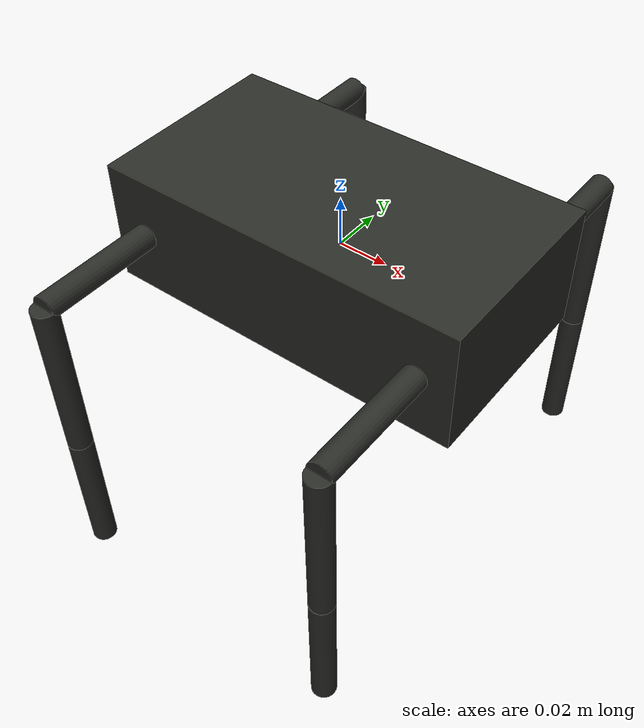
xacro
<?xml version="1.0"?>

<robot name="quad_robot" xmlns:xacro="http://www.ros.org/wiki/xacro">
<!--robot name="robot_structure" xmlns:xacro="http://ros.org/wiki/xacro"-->

	<!-- Robot adjustable params -->
	<xacro:property name="l1" value="0.05"/>
	<xacro:property name="l2" value="0.07"/>
	<xacro:property name="l3" value="0.06"/>
	<xacro:property name="body_width" value="0.08"/>
	<xacro:property name="body_length" value="0.15"/>
	<xacro:property name="body_height" value="0.05"/>
	<xacro:property name="leg_distance" value="0.12"/>

	<!-- fixed params -->
	<xacro:property name="base_link_radius" value="0.005"/>
	<xacro:property name="PI" value="3.1415"/>

	<!-- macro -->
	<xacro:macro name="leg" params="parent number left front">

		<joint name="joint1_in_leg${number}" type="continuous">
			<origin xyz="${front*leg_distance/2} ${left*body_width/2} 0" rpy="0 ${PI/2} 0" />
			<parent link="${parent}" />
			<child link="link1_in_leg${number}" />
			<axis xyz="0 0 1" />  <!-- Rotate around x axis -->
		</joint>

		<transmission name="trans1_in_leg${number}">
			<type>transmission_interface/SimpleTransmission</type>
			<joint name="joint1_in_leg${number}" hardwareInterface="PositionJointInterface"/>
			<actuator name="servo1_in_leg${number}" hardwareInterface="PositionJointInterface" />
		</transmission>

		<link name="link1_in_leg${number}">
			<visual>
				<origin xyz="0 ${left*l1/2} 0" rpy="${PI/2} 0 0" />  <!-- cylinder place horizontally  -->
				<geometry>
					<cylinder length="${l1}" radius="${base_link_radius}" />
				</geometry>
				<material name="black">
					<color rgba="0.16 0.17 0.15 0.9" />
				</material>
			</visual>
			<collision>
				<origin xyz="0 ${left*l1/2} 0" rpy="${PI/2} 0 0" />  <!-- cylinder place horizontally  -->
				<geometry>
					<cylinder length="${l1}" radius="${base_link_radius}" />
				</geometry>
			</collision>
		</link>

		<joint name="joint2_in_leg${number}" type="continuous">
			<origin xyz="0 ${left*l1} 0" rpy="${-PI/2} 0 0" />
			<parent link="link1_in_leg${number}" />
			<child link="link2_in_leg${number}" />
			<axis xyz="0 0 1" />  <!-- Rotate around y axis -->
		</joint>

		<transmission name="trans2_in_leg${number}">
			<type>transmission_interface/SimpleTransmission</type>
			<joint name="joint2_in_leg${number}" hardwareInterface="PositionJointInterface"/>
			<actuator name="servo2_in_leg${number}" hardwareInterface="PositionJointInterface" />
		</transmission>

		<link name="link2_in_leg${number}">
			<visual>
				<origin xyz="${l2/2} 0 0" rpy="0 ${PI/2} 0" />
				<geometry>
					<cylinder length="${l2}" radius="${base_link_radius}" />
				</geometry>
				<material name="black">
					<color rgba="0.16 0.17 0.15 0.9" />
				</material>
			</visual>
			<collision>
				<origin xyz="${l2/2} 0 0" rpy="0 ${PI/2} 0" />
				<geometry>
					<cylinder length="${l2}" radius="${base_link_radius}" />
				</geometry>
			</collision>
		</link>

		<joint name="joint3_in_leg${number}" type="continuous">
			<origin xyz="${l2} 0 0" rpy="0 0 0" />
			<parent link="link2_in_leg${number}" />
			<child link="link3_in_leg${number}" />
			<axis xyz="0 0 1" />  <!-- Rotate around y axis -->
		</joint>

		<transmission name="trans3_in_leg${number}">
			<type>transmission_interface/SimpleTransmission</type>
			<joint name="joint3_in_leg${number}" hardwareInterface="PositionJointInterface"/>
			<actuator name="servo3_in_leg${number}" hardwareInterface="PositionJointInterface" />
		</transmission>

		<link name="link3_in_leg${number}">
			<visual>
				<origin xyz="${l3/2} 0 0" rpy="0 ${PI/2} 0" />
				<geometry>
					<cylinder length="${l3}" radius="${base_link_radius}" />
				</geometry>
				<material name="black">
					<color rgba="0.16 0.17 0.15 0.9" />
				</material>
			</visual>
			<collision>
				<origin xyz="${l3/2} 0 0" rpy="0 ${PI/2} 0" />
				<geometry>
					<cylinder length="${l3}" radius="${base_link_radius}" />
				</geometry>
			</collision>
		</link>
	</xacro:macro>

	<!-- base link -->
	<link name="body">
		<visual>
			<origin xyz="0 0 0" rpy="0 0 0" />
			<geometry>
				<box size="${body_length} ${body_width} ${body_height}" />
			</geometry>
			<material name="black">
				<color rgba="0.16 0.17 0.15 0.9" />
			</material>
		</visual>
		<collision>
			<origin xyz="0 0 0" rpy="0 0 0" />
			<geometry>
				<box size="${body_length} ${body_width} ${body_height}" />
			</geometry>
		</collision>
	</link>

	<xacro:leg parent="body" number="1" left="1" front="1" />
	<xacro:leg parent="body" number="2" left="1" front="-1" />
	<xacro:leg parent="body" number="3" left="-1" front="1" />
	<xacro:leg parent="body" number="4" left="-1" front="-1" />

	<gazebo>
		<plugin name="gazebo_ros_control" filename="libgazebo_ros_control.so">
			<robotNamespace>/quad_robot</robotNamespace>
		</plugin>
	</gazebo>

</robot>
